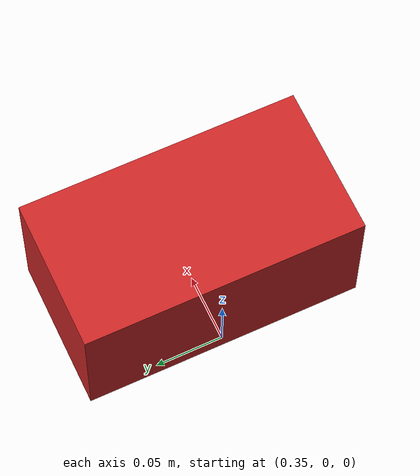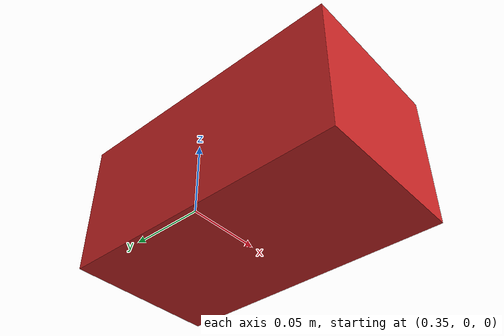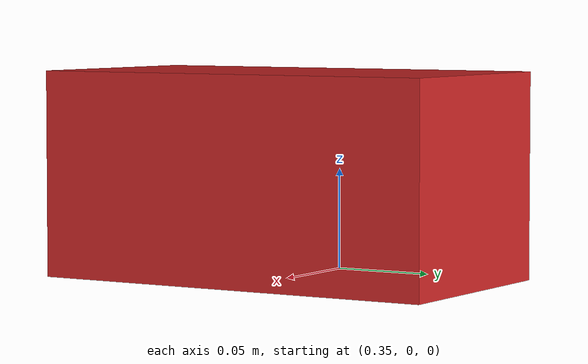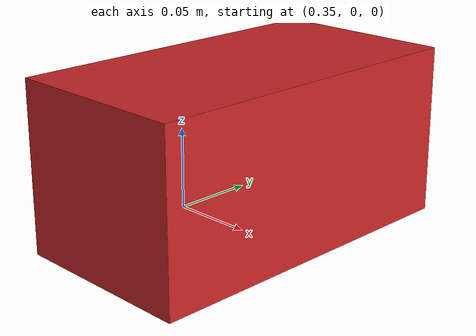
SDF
<?xml version='1.0'?>
<sdf version='1.6'>
  <model name="boxBellow">
    <link name="boxBellow">
      <pose>0.4 0 0.05 0 0 0</pose>
      <inertial>
        <mass>10000</mass>
      </inertial>
      <collision name="box_collision">
        <geometry>
          <box>
              <size>.11 .205 .1</size>
          </box>
        </geometry>
      </collision>
      <visual name="box_visual">
        <geometry>
          <box>
              <size>.11 .205 .1</size>
          </box>
        </geometry>
		<material>
		    <script>
		      <uri>file://media/materials/scripts/gazebo.material</uri>
		      <name>Gazebo/Red</name>
		    </script>
      	</material>
      </visual>
    </link>
  </model>
</sdf>
